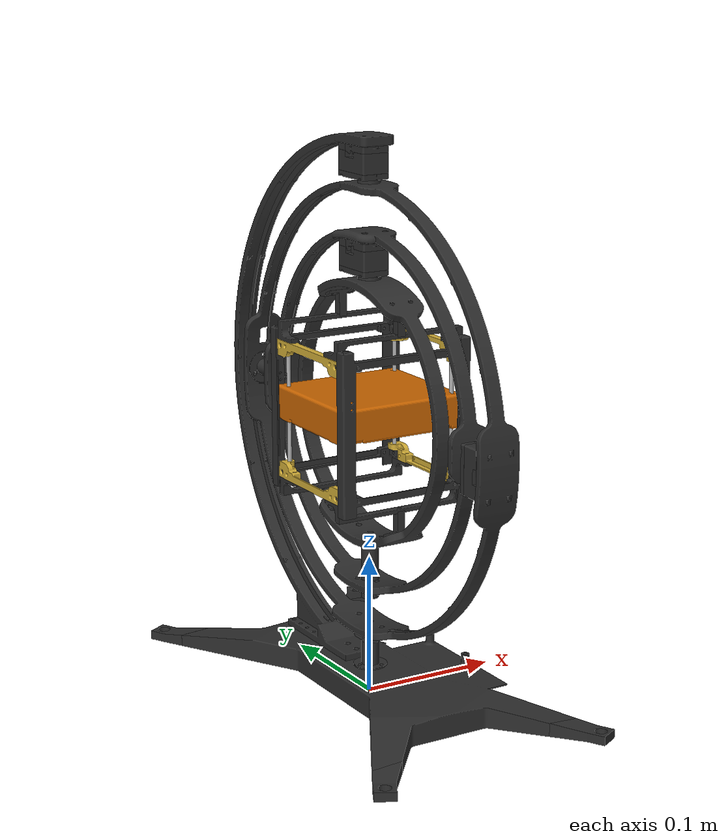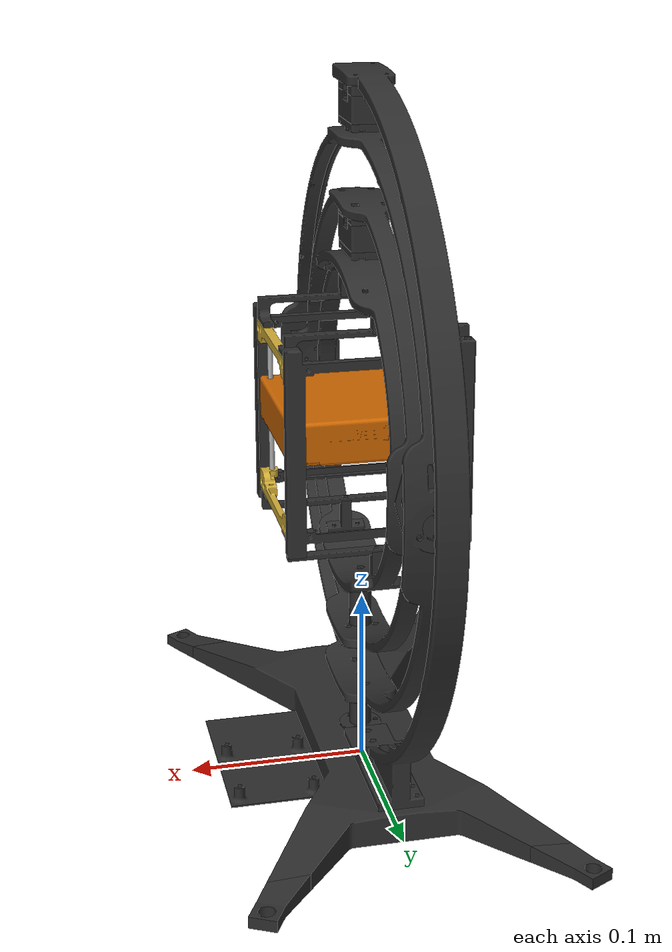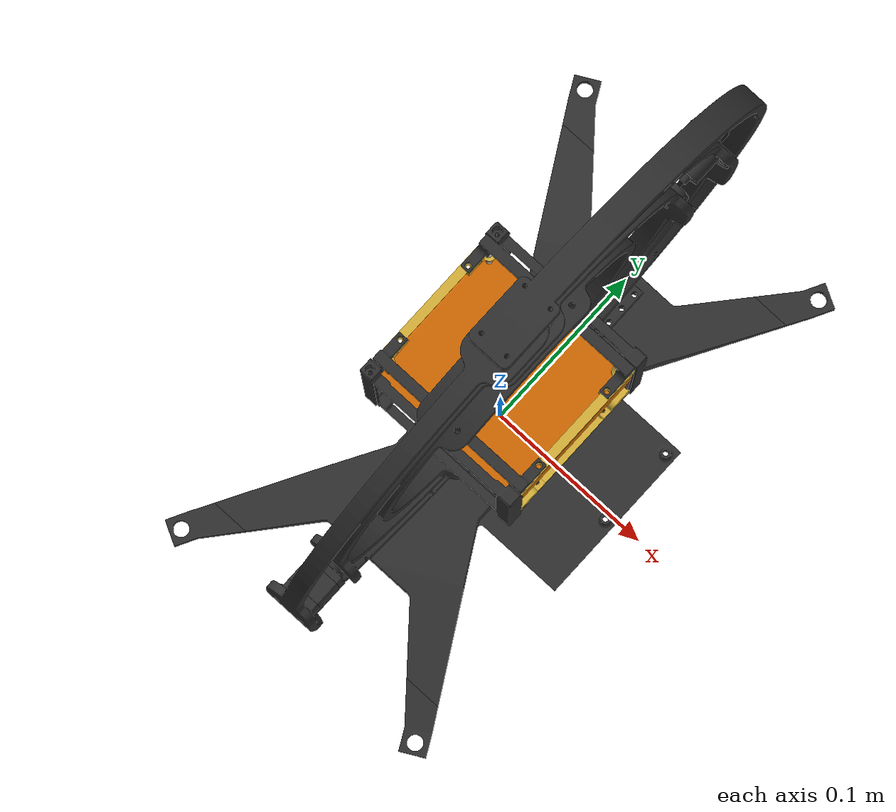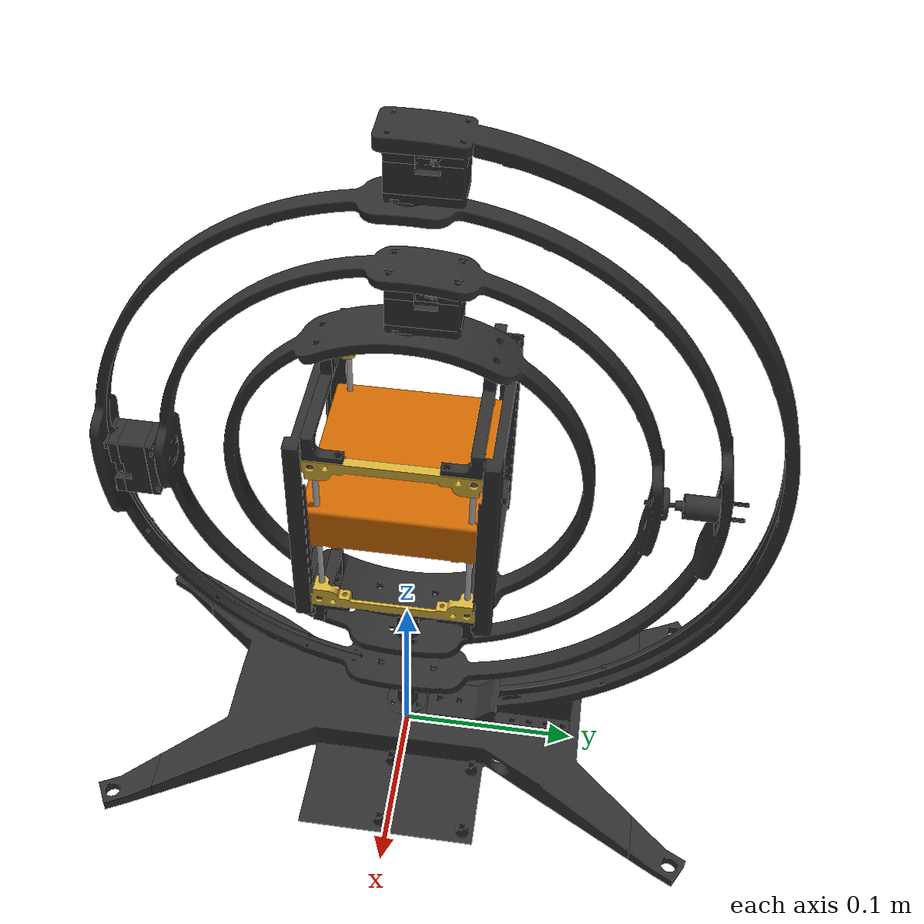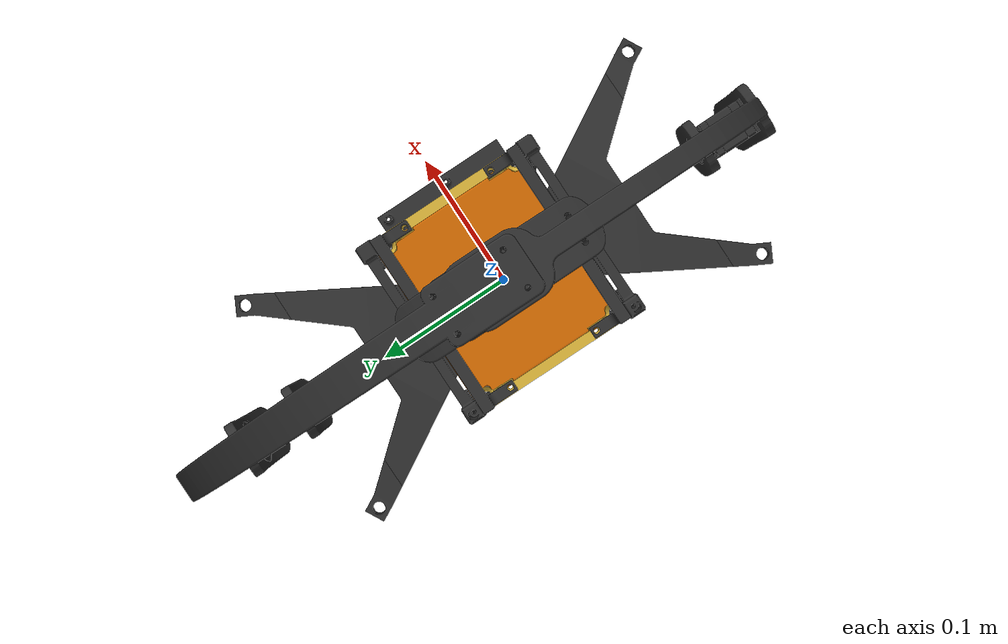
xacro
<?xml version="1.0" ?>
<robot name="testing_rig" xmlns:xacro="http://www.ros.org/wiki/xacro">

<xacro:include filename="$(find testing_rig_description)/urdf/materials.xacro" />
<xacro:include filename="$(find testing_rig_description)/urdf/testing_rig.trans" />
<xacro:include filename="$(find testing_rig_description)/urdf/testing_rig.gazebo" />
<link name="base_link">
  <inertial>
    <origin xyz="0.002283143011506284 0.000145957678142432 0.011736199126999337" rpy="0 0 0"/>
    <mass value="1.173114863642464"/>
    <inertia ixx="0.009424" iyy="0.002095" izz="0.011456" ixy="3e-06" iyz="1e-06" ixz="2.2e-05"/>
  </inertial>
  <visual>
    <origin xyz="0 0 0" rpy="0 0 0"/>
    <geometry>
      <mesh filename="package://testing_rig_description/meshes/base_link.stl" scale="0.001 0.001 0.001"/>
    </geometry>
    <material name="black"/>
  </visual>
  <collision>
    <origin xyz="0 0 0" rpy="0 0 0"/>
    <geometry>
      <mesh filename="package://testing_rig_description/meshes/base_link.stl" scale="0.001 0.001 0.001"/>
    </geometry>
  </collision>
</link>

<link name="tip_v1_1">
  <inertial>
    <origin xyz="0.006915713727585343 0.010568225086676403 -0.0018349509833612667" rpy="0 0 0"/>
    <mass value="0.028814716664613254"/>
    <inertia ixx="2e-06" iyy="2e-06" izz="4e-06" ixy="-1e-06" iyz="0.0" ixz="0.0"/>
  </inertial>
  <visual>
    <origin xyz="-0.069481 -0.138118 -0.008686" rpy="0 0 0"/>
    <geometry>
      <mesh filename="package://testing_rig_description/meshes/tip_v1_1.stl" scale="0.001 0.001 0.001"/>
    </geometry>
    <material name="black"/>
  </visual>
  <collision>
    <origin xyz="-0.069481 -0.138118 -0.008686" rpy="0 0 0"/>
    <geometry>
      <mesh filename="package://testing_rig_description/meshes/tip_v1_1.stl" scale="0.001 0.001 0.001"/>
    </geometry>
  </collision>
</link>

<link name="tip_v1_2_1">
  <inertial>
    <origin xyz="-0.006915713727662615 0.010568225086541566 -0.0018349509833612667" rpy="0 0 0"/>
    <mass value="0.02881471666461372"/>
    <inertia ixx="2e-06" iyy="2e-06" izz="4e-06" ixy="1e-06" iyz="0.0" ixz="-0.0"/>
  </inertial>
  <visual>
    <origin xyz="0.069481 -0.138118 -0.008686" rpy="0 0 0"/>
    <geometry>
      <mesh filename="package://testing_rig_description/meshes/tip_v1_2_1.stl" scale="0.001 0.001 0.001"/>
    </geometry>
    <material name="black"/>
  </visual>
  <collision>
    <origin xyz="0.069481 -0.138118 -0.008686" rpy="0 0 0"/>
    <geometry>
      <mesh filename="package://testing_rig_description/meshes/tip_v1_2_1.stl" scale="0.001 0.001 0.001"/>
    </geometry>
  </collision>
</link>

<link name="tip_v1_3_1">
  <inertial>
    <origin xyz="-0.006915713727585343 -0.010568225086676403 -0.0018349509833612667" rpy="0 0 0"/>
    <mass value="0.028814716664613254"/>
    <inertia ixx="2e-06" iyy="2e-06" izz="4e-06" ixy="-1e-06" iyz="-0.0" ixz="-0.0"/>
  </inertial>
  <visual>
    <origin xyz="0.069481 0.138118 -0.008686" rpy="0 0 0"/>
    <geometry>
      <mesh filename="package://testing_rig_description/meshes/tip_v1_3_1.stl" scale="0.001 0.001 0.001"/>
    </geometry>
    <material name="black"/>
  </visual>
  <collision>
    <origin xyz="0.069481 0.138118 -0.008686" rpy="0 0 0"/>
    <geometry>
      <mesh filename="package://testing_rig_description/meshes/tip_v1_3_1.stl" scale="0.001 0.001 0.001"/>
    </geometry>
  </collision>
</link>

<link name="tip_v1_4_1">
  <inertial>
    <origin xyz="0.006915713727662615 -0.010568225086541566 -0.0018349509833612667" rpy="0 0 0"/>
    <mass value="0.02881471666461372"/>
    <inertia ixx="2e-06" iyy="2e-06" izz="4e-06" ixy="1e-06" iyz="-0.0" ixz="0.0"/>
  </inertial>
  <visual>
    <origin xyz="-0.069481 0.138118 -0.008686" rpy="0 0 0"/>
    <geometry>
      <mesh filename="package://testing_rig_description/meshes/tip_v1_4_1.stl" scale="0.001 0.001 0.001"/>
    </geometry>
    <material name="black"/>
  </visual>
  <collision>
    <origin xyz="-0.069481 0.138118 -0.008686" rpy="0 0 0"/>
    <geometry>
      <mesh filename="package://testing_rig_description/meshes/tip_v1_4_1.stl" scale="0.001 0.001 0.001"/>
    </geometry>
  </collision>
</link>

<link name="base_tip_v1_1">
  <inertial>
    <origin xyz="-0.004497696402113562 0.007793589314646079 0.00837453733530684" rpy="0 0 0"/>
    <mass value="0.021513623215923098"/>
    <inertia ixx="1e-06" iyy="1e-06" izz="1e-06" ixy="-0.0" iyz="0.0" ixz="-0.0"/>
  </inertial>
  <visual>
    <origin xyz="-0.00545 0.007794 -0.019499" rpy="0 0 0"/>
    <geometry>
      <mesh filename="package://testing_rig_description/meshes/base_tip_v1_1.stl" scale="0.001 0.001 0.001"/>
    </geometry>
    <material name="black"/>
  </visual>
  <collision>
    <origin xyz="-0.00545 0.007794 -0.019499" rpy="0 0 0"/>
    <geometry>
      <mesh filename="package://testing_rig_description/meshes/base_tip_v1_1.stl" scale="0.001 0.001 0.001"/>
    </geometry>
  </collision>
</link>

<link name="SupportRing_Copy_v1_1">
  <inertial>
    <origin xyz="-8.350447269018981e-08 0.06702959184613164 0.15202181931555206" rpy="0 0 0"/>
    <mass value="0.3960382333506536"/>
    <inertia ixx="0.009724" iyy="0.008417" izz="0.001334" ixy="-0.0" iyz="-5.4e-05" ixz="0.0"/>
  </inertial>
  <visual>
    <origin xyz="-0.00095 -0.03155 -0.019499" rpy="0 0 0"/>
    <geometry>
      <mesh filename="package://testing_rig_description/meshes/SupportRing_Copy_v1_1.stl" scale="0.001 0.001 0.001"/>
    </geometry>
    <material name="black"/>
  </visual>
  <collision>
    <origin xyz="-0.00095 -0.03155 -0.019499" rpy="0 0 0"/>
    <geometry>
      <mesh filename="package://testing_rig_description/meshes/SupportRing_Copy_v1_1.stl" scale="0.001 0.001 0.001"/>
    </geometry>
  </collision>
</link>

<link name="motor1_v1_1">
  <inertial>
    <origin xyz="0.008014698797877466 0.015182827303640437 -0.0025432558533467486" rpy="0 0 0"/>
    <mass value="0.002470366825195182"/>
    <inertia ixx="0.0" iyy="0.0" izz="0.0" ixy="-0.0" iyz="-0.0" ixz="0.0"/>
  </inertial>
  <visual>
    <origin xyz="0.007037 0.005599 -0.38914" rpy="0 0 0"/>
    <geometry>
      <mesh filename="package://testing_rig_description/meshes/motor1_v1_1.stl" scale="0.001 0.001 0.001"/>
    </geometry>
    <material name="black"/>
  </visual>
  <collision>
    <origin xyz="0.007037 0.005599 -0.38914" rpy="0 0 0"/>
    <geometry>
      <mesh filename="package://testing_rig_description/meshes/motor1_v1_1.stl" scale="0.001 0.001 0.001"/>
    </geometry>
  </collision>
</link>

<link name="motor2_v1_1">
  <inertial>
    <origin xyz="0.008010560901146524 0.014833713929799973 -0.00785765219931972" rpy="0 0 0"/>
    <mass value="0.01562694373185061"/>
    <inertia ixx="2e-06" iyy="1e-06" izz="2e-06" ixy="-0.0" iyz="0.0" ixz="-0.0"/>
  </inertial>
  <visual>
    <origin xyz="0.007037 0.005622 -0.38464" rpy="0 0 0"/>
    <geometry>
      <mesh filename="package://testing_rig_description/meshes/motor2_v1_1.stl" scale="0.001 0.001 0.001"/>
    </geometry>
    <material name="black"/>
  </visual>
  <collision>
    <origin xyz="0.007037 0.005622 -0.38464" rpy="0 0 0"/>
    <geometry>
      <mesh filename="package://testing_rig_description/meshes/motor2_v1_1.stl" scale="0.001 0.001 0.001"/>
    </geometry>
  </collision>
</link>

<link name="motor3_v1_1">
  <inertial>
    <origin xyz="0.008032346000044807 0.01557482831062404 -0.0017498962219740233" rpy="0 0 0"/>
    <mass value="0.001972071341929661"/>
    <inertia ixx="0.0" iyy="0.0" izz="0.0" ixy="-0.0" iyz="0.0" ixz="0.0"/>
  </inertial>
  <visual>
    <origin xyz="0.007037 0.005701 -0.36964" rpy="0 0 0"/>
    <geometry>
      <mesh filename="package://testing_rig_description/meshes/motor3_v1_1.stl" scale="0.001 0.001 0.001"/>
    </geometry>
    <material name="black"/>
  </visual>
  <collision>
    <origin xyz="0.007037 0.005701 -0.36964" rpy="0 0 0"/>
    <geometry>
      <mesh filename="package://testing_rig_description/meshes/motor3_v1_1.stl" scale="0.001 0.001 0.001"/>
    </geometry>
  </collision>
</link>

<link name="motor4_v1_1">
  <inertial>
    <origin xyz="-4.967728888169692e-07 -9.228778182680418e-06 -0.0010983174824755748" rpy="0 0 0"/>
    <mass value="0.0005495044917146475"/>
    <inertia ixx="0.0" iyy="0.0" izz="0.0" ixy="0.0" iyz="0.0" ixz="-0.0"/>
  </inertial>
  <visual>
    <origin xyz="-0.000963 -0.00178 -0.366101" rpy="0 0 0"/>
    <geometry>
      <mesh filename="package://testing_rig_description/meshes/motor4_v1_1.stl" scale="0.001 0.001 0.001"/>
    </geometry>
    <material name="black"/>
  </visual>
  <collision>
    <origin xyz="-0.000963 -0.00178 -0.366101" rpy="0 0 0"/>
    <geometry>
      <mesh filename="package://testing_rig_description/meshes/motor4_v1_1.stl" scale="0.001 0.001 0.001"/>
    </geometry>
  </collision>
</link>

<link name="ThirdRingFinal_Copy_v2_1">
  <inertial>
    <origin xyz="-3.193153753389968e-05 0.001860335754553891 -0.16595994878561365" rpy="0 0 0"/>
    <mass value="0.4802307720549796"/>
    <inertia ixx="0.011664" iyy="0.005481" izz="0.006226" ixy="-0.0" iyz="9.2e-05" ixz="2e-06"/>
  </inertial>
  <visual>
    <origin xyz="-0.000963 -0.001765 -0.363201" rpy="0 0 0"/>
    <geometry>
      <mesh filename="package://testing_rig_description/meshes/ThirdRingFinal_Copy_v2_1.stl" scale="0.001 0.001 0.001"/>
    </geometry>
    <material name="black"/>
  </visual>
  <collision>
    <origin xyz="-0.000963 -0.001765 -0.363201" rpy="0 0 0"/>
    <geometry>
      <mesh filename="package://testing_rig_description/meshes/ThirdRingFinal_Copy_v2_1.stl" scale="0.001 0.001 0.001"/>
    </geometry>
  </collision>
</link>

<link name="outer_ring_ball_bearing_v1_1">
  <inertial>
    <origin xyz="-4.967483623370553e-07 -1.2198596372398263e-05 -0.0022771298909455423" rpy="0 0 0"/>
    <mass value="0.013135627183672435"/>
    <inertia ixx="1e-06" iyy="0.0" izz="1e-06" ixy="-0.0" iyz="0.0" ixz="-0.0"/>
  </inertial>
  <visual>
    <origin xyz="-0.000963 -0.000115 -0.04978" rpy="0 0 0"/>
    <geometry>
      <mesh filename="package://testing_rig_description/meshes/outer_ring_ball_bearing_v1_1.stl" scale="0.001 0.001 0.001"/>
    </geometry>
    <material name="black"/>
  </visual>
  <collision>
    <origin xyz="-0.000963 -0.000115 -0.04978" rpy="0 0 0"/>
    <geometry>
      <mesh filename="package://testing_rig_description/meshes/outer_ring_ball_bearing_v1_1.stl" scale="0.001 0.001 0.001"/>
    </geometry>
  </collision>
</link>

<link name="outer_ring_tip_v1_1">
  <inertial>
    <origin xyz="-0.0077949074581845895 -0.008350603547906094 0.004541322355146704" rpy="0 0 0"/>
    <mass value="0.021513623215923098"/>
    <inertia ixx="1e-06" iyy="1e-06" izz="1e-06" ixy="-0.0" iyz="0.0" ixz="0.0"/>
  </inertial>
  <visual>
    <origin xyz="-0.008757 -0.155832 -0.199888" rpy="0 0 0"/>
    <geometry>
      <mesh filename="package://testing_rig_description/meshes/outer_ring_tip_v1_1.stl" scale="0.001 0.001 0.001"/>
    </geometry>
    <material name="black"/>
  </visual>
  <collision>
    <origin xyz="-0.008757 -0.155832 -0.199888" rpy="0 0 0"/>
    <geometry>
      <mesh filename="package://testing_rig_description/meshes/outer_ring_tip_v1_1.stl" scale="0.001 0.001 0.001"/>
    </geometry>
  </collision>
</link>

<link name="motor1_v1__1__1">
  <inertial>
    <origin xyz="0.007984307760769185 0.002383766895279249 -0.015208065367221135" rpy="0 0 0"/>
    <mass value="0.002470366825195182"/>
    <inertia ixx="0.0" iyy="0.0" izz="0.0" ixy="0.0" iyz="-0.0" ixz="-0.0"/>
  </inertial>
  <visual>
    <origin xyz="0.007037 0.150482 -0.2135" rpy="0 0 0"/>
    <geometry>
      <mesh filename="package://testing_rig_description/meshes/motor1_v1__1__1.stl" scale="0.001 0.001 0.001"/>
    </geometry>
    <material name="black"/>
  </visual>
  <collision>
    <origin xyz="0.007037 0.150482 -0.2135" rpy="0 0 0"/>
    <geometry>
      <mesh filename="package://testing_rig_description/meshes/motor1_v1__1__1.stl" scale="0.001 0.001 0.001"/>
    </geometry>
  </collision>
</link>

<link name="motor2_v1__1__1">
  <inertial>
    <origin xyz="0.007988445657500181 0.0077015371992914805 -0.014916308494750091" rpy="0 0 0"/>
    <mass value="0.01562694373185061"/>
    <inertia ixx="2e-06" iyy="2e-06" izz="1e-06" ixy="-0.0" iyz="-0.0" ixz="-0.0"/>
  </inertial>
  <visual>
    <origin xyz="0.007037 0.145982 -0.213477" rpy="0 0 0"/>
    <geometry>
      <mesh filename="package://testing_rig_description/meshes/motor2_v1__1__1.stl" scale="0.001 0.001 0.001"/>
    </geometry>
    <material name="black"/>
  </visual>
  <collision>
    <origin xyz="0.007037 0.145982 -0.213477" rpy="0 0 0"/>
    <geometry>
      <mesh filename="package://testing_rig_description/meshes/motor2_v1__1__1.stl" scale="0.001 0.001 0.001"/>
    </geometry>
  </collision>
</link>

<link name="motor3_v1__1__1">
  <inertial>
    <origin xyz="0.007966660558601882 0.0015863169022420909 -0.015593012697308839" rpy="0 0 0"/>
    <mass value="0.001972071341929661"/>
    <inertia ixx="0.0" iyy="0.0" izz="0.0" ixy="0.0" iyz="-0.0" ixz="-0.0"/>
  </inertial>
  <visual>
    <origin xyz="0.007037 0.130982 -0.213398" rpy="0 0 0"/>
    <geometry>
      <mesh filename="package://testing_rig_description/meshes/motor3_v1__1__1.stl" scale="0.001 0.001 0.001"/>
    </geometry>
    <material name="black"/>
  </visual>
  <collision>
    <origin xyz="0.007037 0.130982 -0.213398" rpy="0 0 0"/>
    <geometry>
      <mesh filename="package://testing_rig_description/meshes/motor3_v1__1__1.stl" scale="0.001 0.001 0.001"/>
    </geometry>
  </collision>
</link>

<link name="motor4_v1__1__1">
  <inertial>
    <origin xyz="-4.966685807063177e-07 0.0010978578364332636 -8.917837016758634e-06" rpy="0 0 0"/>
    <mass value="0.0005495044917146475"/>
    <inertia ixx="0.0" iyy="0.0" izz="0.0" ixy="0.0" iyz="-0.0" ixz="0.0"/>
  </inertial>
  <visual>
    <origin xyz="-0.000963 0.127521 -0.205879" rpy="0 0 0"/>
    <geometry>
      <mesh filename="package://testing_rig_description/meshes/motor4_v1__1__1.stl" scale="0.001 0.001 0.001"/>
    </geometry>
    <material name="black"/>
  </visual>
  <collision>
    <origin xyz="-0.000963 0.127521 -0.205879" rpy="0 0 0"/>
    <geometry>
      <mesh filename="package://testing_rig_description/meshes/motor4_v1__1__1.stl" scale="0.001 0.001 0.001"/>
    </geometry>
  </collision>
</link>

<link name="SecondRingFinal_Copy_v2_1">
  <inertial>
    <origin xyz="5.0953962492784e-05 0.12264301881889256 -0.0034166016322534076" rpy="0 0 0"/>
    <mass value="0.40091267518933105"/>
    <inertia ixx="0.006113" iyy="0.003236" izz="0.002909" ixy="-0.0" iyz="4.1e-05" ixz="-3e-06"/>
  </inertial>
  <visual>
    <origin xyz="-0.000963 0.124621 -0.205864" rpy="0 0 0"/>
    <geometry>
      <mesh filename="package://testing_rig_description/meshes/SecondRingFinal_Copy_v2_1.stl" scale="0.001 0.001 0.001"/>
    </geometry>
    <material name="black"/>
  </visual>
  <collision>
    <origin xyz="-0.000963 0.124621 -0.205864" rpy="0 0 0"/>
    <geometry>
      <mesh filename="package://testing_rig_description/meshes/SecondRingFinal_Copy_v2_1.stl" scale="0.001 0.001 0.001"/>
    </geometry>
  </collision>
</link>

<link name="outer_ring_ball_bearing_v1__1__1">
  <inertial>
    <origin xyz="-4.96692990938942e-07 0.0022775762104285113 -1.1715936935219329e-05" rpy="0 0 0"/>
    <mass value="0.013135627183672435"/>
    <inertia ixx="1e-06" iyy="1e-06" izz="0.0" ixy="-0.0" iyz="-0.0" ixz="-0.0"/>
  </inertial>
  <visual>
    <origin xyz="-0.000963 -0.123425 -0.204558" rpy="0 0 0"/>
    <geometry>
      <mesh filename="package://testing_rig_description/meshes/outer_ring_ball_bearing_v1__1__1.stl" scale="0.001 0.001 0.001"/>
    </geometry>
    <material name="black"/>
  </visual>
  <collision>
    <origin xyz="-0.000963 -0.123425 -0.204558" rpy="0 0 0"/>
    <geometry>
      <mesh filename="package://testing_rig_description/meshes/outer_ring_ball_bearing_v1__1__1.stl" scale="0.001 0.001 0.001"/>
    </geometry>
  </collision>
</link>

<link name="motor1_v1__2__1">
  <inertial>
    <origin xyz="0.008014698797877504 0.015182559733266876 -0.0025433263319444843" rpy="0 0 0"/>
    <mass value="0.002470366825195182"/>
    <inertia ixx="0.0" iyy="0.0" izz="0.0" ixy="-0.0" iyz="-0.0" ixz="0.0"/>
  </inertial>
  <visual>
    <origin xyz="0.007037 0.005999 -0.323786" rpy="0 0 0"/>
    <geometry>
      <mesh filename="package://testing_rig_description/meshes/motor1_v1__2__1.stl" scale="0.001 0.001 0.001"/>
    </geometry>
    <material name="black"/>
  </visual>
  <collision>
    <origin xyz="0.007037 0.005999 -0.323786" rpy="0 0 0"/>
    <geometry>
      <mesh filename="package://testing_rig_description/meshes/motor1_v1__2__1.stl" scale="0.001 0.001 0.001"/>
    </geometry>
  </collision>
</link>

<link name="motor2_v1__2__1">
  <inertial>
    <origin xyz="0.008010560901146529 0.014834446359426358 -0.007857722677917567" rpy="0 0 0"/>
    <mass value="0.01562694373185061"/>
    <inertia ixx="2e-06" iyy="1e-06" izz="2e-06" ixy="-0.0" iyz="0.0" ixz="-0.0"/>
  </inertial>
  <visual>
    <origin xyz="0.007037 0.006023 -0.319286" rpy="0 0 0"/>
    <geometry>
      <mesh filename="package://testing_rig_description/meshes/motor2_v1__2__1.stl" scale="0.001 0.001 0.001"/>
    </geometry>
    <material name="black"/>
  </visual>
  <collision>
    <origin xyz="0.007037 0.006023 -0.319286" rpy="0 0 0"/>
    <geometry>
      <mesh filename="package://testing_rig_description/meshes/motor2_v1__2__1.stl" scale="0.001 0.001 0.001"/>
    </geometry>
  </collision>
</link>

<link name="motor3_v1__2__1">
  <inertial>
    <origin xyz="0.008032346000044833 0.01557556074025046 -0.0017499667005719255" rpy="0 0 0"/>
    <mass value="0.001972071341929661"/>
    <inertia ixx="0.0" iyy="0.0" izz="0.0" ixy="-0.0" iyz="0.0" ixz="0.0"/>
  </inertial>
  <visual>
    <origin xyz="0.007037 0.006102 -0.304286" rpy="0 0 0"/>
    <geometry>
      <mesh filename="package://testing_rig_description/meshes/motor3_v1__2__1.stl" scale="0.001 0.001 0.001"/>
    </geometry>
    <material name="black"/>
  </visual>
  <collision>
    <origin xyz="0.007037 0.006102 -0.304286" rpy="0 0 0"/>
    <geometry>
      <mesh filename="package://testing_rig_description/meshes/motor3_v1__2__1.stl" scale="0.001 0.001 0.001"/>
    </geometry>
  </collision>
</link>

<link name="motor4_v1__2__1">
  <inertial>
    <origin xyz="-4.967728887887799e-07 -9.496348556266429e-06 -0.001098387961073366" rpy="0 0 0"/>
    <mass value="0.0005495044917146475"/>
    <inertia ixx="0.0" iyy="0.0" izz="0.0" ixy="0.0" iyz="0.0" ixz="-0.0"/>
  </inertial>
  <visual>
    <origin xyz="-0.000963 -0.00138 -0.300747" rpy="0 0 0"/>
    <geometry>
      <mesh filename="package://testing_rig_description/meshes/motor4_v1__2__1.stl" scale="0.001 0.001 0.001"/>
    </geometry>
    <material name="black"/>
  </visual>
  <collision>
    <origin xyz="-0.000963 -0.00138 -0.300747" rpy="0 0 0"/>
    <geometry>
      <mesh filename="package://testing_rig_description/meshes/motor4_v1__2__1.stl" scale="0.001 0.001 0.001"/>
    </geometry>
  </collision>
</link>

<link name="FirstRingFinal_Copy_v2_1">
  <inertial>
    <origin xyz="-4.968390760245935e-07 -0.00046852894593677375 -0.0889142372561941" rpy="0 0 0"/>
    <mass value="0.40633348225597904"/>
    <inertia ixx="0.003302" iyy="0.002161" izz="0.001182" ixy="-0.0" iyz="-5e-06" ixz="-0.0"/>
  </inertial>
  <visual>
    <origin xyz="-0.000963 -0.001365 -0.297847" rpy="0 0 0"/>
    <geometry>
      <mesh filename="package://testing_rig_description/meshes/FirstRingFinal_Copy_v2_1.stl" scale="0.001 0.001 0.001"/>
    </geometry>
    <material name="black"/>
  </visual>
  <collision>
    <origin xyz="-0.000963 -0.001365 -0.297847" rpy="0 0 0"/>
    <geometry>
      <mesh filename="package://testing_rig_description/meshes/FirstRingFinal_Copy_v2_1.stl" scale="0.001 0.001 0.001"/>
    </geometry>
  </collision>
</link>

<link name="inner_ring_ball_bearing_v1_1">
  <inertial>
    <origin xyz="-4.967483622814357e-07 -1.1841621000433541e-05 -0.0022777998152183204" rpy="0 0 0"/>
    <mass value="0.013135627183672435"/>
    <inertia ixx="1e-06" iyy="0.0" izz="1e-06" ixy="-0.0" iyz="0.0" ixz="-0.0"/>
  </inertial>
  <visual>
    <origin xyz="-0.000963 -0.000406 -0.115798" rpy="0 0 0"/>
    <geometry>
      <mesh filename="package://testing_rig_description/meshes/inner_ring_ball_bearing_v1_1.stl" scale="0.001 0.001 0.001"/>
    </geometry>
    <material name="black"/>
  </visual>
  <collision>
    <origin xyz="-0.000963 -0.000406 -0.115798" rpy="0 0 0"/>
    <geometry>
      <mesh filename="package://testing_rig_description/meshes/inner_ring_ball_bearing_v1_1.stl" scale="0.001 0.001 0.001"/>
    </geometry>
  </collision>
</link>

<link name="inner_ring_pin_v1_1">
  <inertial>
    <origin xyz="-0.015962488766863712 0.00047835012240045533 0.011554971108466872" rpy="0 0 0"/>
    <mass value="0.05723159280409613"/>
    <inertia ixx="1.3e-05" iyy="1.3e-05" izz="3e-06" ixy="-0.0" iyz="-0.0" ixz="0.0"/>
  </inertial>
  <visual>
    <origin xyz="-0.016925 0.000161 -0.087365" rpy="0 0 0"/>
    <geometry>
      <mesh filename="package://testing_rig_description/meshes/inner_ring_pin_v1_1.stl" scale="0.001 0.001 0.001"/>
    </geometry>
    <material name="black"/>
  </visual>
  <collision>
    <origin xyz="-0.016925 0.000161 -0.087365" rpy="0 0 0"/>
    <geometry>
      <mesh filename="package://testing_rig_description/meshes/inner_ring_pin_v1_1.stl" scale="0.001 0.001 0.001"/>
    </geometry>
  </collision>
</link>

<link name="Bracket-Ring-Mount_v1_1">
  <inertial>
    <origin xyz="-0.007000496346470639 -0.00024406993603380556 0.0066089485500640255" rpy="0 0 0"/>
    <mass value="0.006460384548743213"/>
    <inertia ixx="0.0" iyy="0.0" izz="0.0" ixy="-0.0" iyz="-0.0" ixz="0.0"/>
  </inertial>
  <visual>
    <origin xyz="-0.007963 -0.03908 -0.126789" rpy="0 0 0"/>
    <geometry>
      <mesh filename="package://testing_rig_description/meshes/Bracket-Ring-Mount_v1_1.stl" scale="0.001 0.001 0.001"/>
    </geometry>
    <material name="black"/>
  </visual>
  <collision>
    <origin xyz="-0.007963 -0.03908 -0.126789" rpy="0 0 0"/>
    <geometry>
      <mesh filename="package://testing_rig_description/meshes/Bracket-Ring-Mount_v1_1.stl" scale="0.001 0.001 0.001"/>
    </geometry>
  </collision>
</link>

<link name="CubeSat1UMountingBracket_v1_1">
  <inertial>
    <origin xyz="-1.7057104253442694e-06 -0.03837245970328034 0.0033703317955060264" rpy="0 0 0"/>
    <mass value="0.0447695629017108"/>
    <inertia ixx="6.3e-05" iyy="6.1e-05" izz="0.000123" ixy="0.0" iyz="0.0" ixz="0.0"/>
  </inertial>
  <visual>
    <origin xyz="-0.000963 -0.038945 -0.144403" rpy="0 0 0"/>
    <geometry>
      <mesh filename="package://testing_rig_description/meshes/CubeSat1UMountingBracket_v1_1.stl" scale="0.001 0.001 0.001"/>
    </geometry>
    <material name="black"/>
  </visual>
  <collision>
    <origin xyz="-0.000963 -0.038945 -0.144403" rpy="0 0 0"/>
    <geometry>
      <mesh filename="package://testing_rig_description/meshes/CubeSat1UMountingBracket_v1_1.stl" scale="0.001 0.001 0.001"/>
    </geometry>
  </collision>
</link>

<link name="1U_Cubesat_Rib_2_v1_1">
  <inertial>
    <origin xyz="-0.0005284260177583697 -0.024739695415205976 0.0048544779101448166" rpy="0 0 0"/>
    <mass value="0.015886475366101913"/>
    <inertia ixx="1.3e-05" iyy="0.0" izz="1.3e-05" ixy="-0.0" iyz="0.0" ixz="-0.0"/>
  </inertial>
  <visual>
    <origin xyz="0.044837 -0.025316 -0.155975" rpy="0 0 0"/>
    <geometry>
      <mesh filename="package://testing_rig_description/meshes/1U_Cubesat_Rib_2_v1_1.stl" scale="0.001 0.001 0.001"/>
    </geometry>
    <material name="gold"/>
  </visual>
  <collision>
    <origin xyz="0.044837 -0.025316 -0.155975" rpy="0 0 0"/>
    <geometry>
      <mesh filename="package://testing_rig_description/meshes/1U_Cubesat_Rib_2_v1_1.stl" scale="0.001 0.001 0.001"/>
    </geometry>
  </collision>
</link>

<link name="1U_Cubesat_Side_Frame_2_v1_1">
  <inertial>
    <origin xyz="0.049280897611112776 0.008784247488415081 0.04685979174242769" rpy="0 0 0"/>
    <mass value="0.07550573244327077"/>
    <inertia ixx="0.000129" iyy="0.000267" izz="0.000139" ixy="-0.0" iyz="-0.0" ixz="-5e-06"/>
  </inertial>
  <visual>
    <origin xyz="0.047037 -0.038137 -0.160007" rpy="0 0 0"/>
    <geometry>
      <mesh filename="package://testing_rig_description/meshes/1U_Cubesat_Side_Frame_2_v1_1.stl" scale="0.001 0.001 0.001"/>
    </geometry>
    <material name="black"/>
  </visual>
  <collision>
    <origin xyz="0.047037 -0.038137 -0.160007" rpy="0 0 0"/>
    <geometry>
      <mesh filename="package://testing_rig_description/meshes/1U_Cubesat_Side_Frame_2_v1_1.stl" scale="0.001 0.001 0.001"/>
    </geometry>
  </collision>
</link>

<link name="1U_Cubesat_Side_Frame_1_v1_1">
  <inertial>
    <origin xyz="0.04927361497301489 -0.008289485219094728 0.04691364874078996" rpy="0 0 0"/>
    <mass value="0.07551919617430682"/>
    <inertia ixx="0.000129" iyy="0.000267" izz="0.000139" ixy="0.0" iyz="-1e-06" ixz="-5e-06"/>
  </inertial>
  <visual>
    <origin xyz="0.047037 0.036862 -0.160402" rpy="0 0 0"/>
    <geometry>
      <mesh filename="package://testing_rig_description/meshes/1U_Cubesat_Side_Frame_1_v1_1.stl" scale="0.001 0.001 0.001"/>
    </geometry>
    <material name="black"/>
  </visual>
  <collision>
    <origin xyz="0.047037 0.036862 -0.160402" rpy="0 0 0"/>
    <geometry>
      <mesh filename="package://testing_rig_description/meshes/1U_Cubesat_Side_Frame_1_v1_1.stl" scale="0.001 0.001 0.001"/>
    </geometry>
  </collision>
</link>

<link name="1U_Cubesat_Rib_2_v1_2">
  <inertial>
    <origin xyz="0.001671573982241846 0.03756145814361564 -0.0008223751920644062" rpy="0 0 0"/>
    <mass value="0.015886475366101913"/>
    <inertia ixx="1.3e-05" iyy="0.0" izz="1.3e-05" ixy="0.0" iyz="0.0" ixz="0.0"/>
  </inertial>
  <visual>
    <origin xyz="0.047037 0.036387 -0.250601" rpy="0 0 0"/>
    <geometry>
      <mesh filename="package://testing_rig_description/meshes/1U_Cubesat_Rib_2_v1_2.stl" scale="0.001 0.001 0.001"/>
    </geometry>
    <material name="gold"/>
  </visual>
  <collision>
    <origin xyz="0.047037 0.036387 -0.250601" rpy="0 0 0"/>
    <geometry>
      <mesh filename="package://testing_rig_description/meshes/1U_Cubesat_Rib_2_v1_2.stl" scale="0.001 0.001 0.001"/>
    </geometry>
  </collision>
</link>

<link name="rod_v1_1">
  <inertial>
    <origin xyz="-4.967725427754144e-07 0.0002173462814715199 0.041349303116065494" rpy="0 0 0"/>
    <mass value="0.00436828024479217"/>
    <inertia ixx="2e-06" iyy="2e-06" izz="0.0" ixy="0.0" iyz="-0.0" ixz="0.0"/>
  </inertial>
  <visual>
    <origin xyz="0.041937 -0.037462 -0.164611" rpy="0 0 0"/>
    <geometry>
      <mesh filename="package://testing_rig_description/meshes/rod_v1_1.stl" scale="0.001 0.001 0.001"/>
    </geometry>
    <material name="silver"/>
  </visual>
  <collision>
    <origin xyz="0.041937 -0.037462 -0.164611" rpy="0 0 0"/>
    <geometry>
      <mesh filename="package://testing_rig_description/meshes/rod_v1_1.stl" scale="0.001 0.001 0.001"/>
    </geometry>
  </collision>
</link>

<link name="rod_v1__1__1">
  <inertial>
    <origin xyz="-4.967725427407199e-07 0.00021736761502647028 0.041349302501221125" rpy="0 0 0"/>
    <mass value="0.00436828024479217"/>
    <inertia ixx="2e-06" iyy="2e-06" izz="0.0" ixy="-0.0" iyz="-0.0" ixz="0.0"/>
  </inertial>
  <visual>
    <origin xyz="0.041937 0.036237 -0.164999" rpy="0 0 0"/>
    <geometry>
      <mesh filename="package://testing_rig_description/meshes/rod_v1__1__1.stl" scale="0.001 0.001 0.001"/>
    </geometry>
    <material name="silver"/>
  </visual>
  <collision>
    <origin xyz="0.041937 0.036237 -0.164999" rpy="0 0 0"/>
    <geometry>
      <mesh filename="package://testing_rig_description/meshes/rod_v1__1__1.stl" scale="0.001 0.001 0.001"/>
    </geometry>
  </collision>
</link>

<link name="Beacon_bottom_v1_1">
  <inertial>
    <origin xyz="0.04213774207612821 0.0369431841640967 -0.00011487800293769057" rpy="0 0 0"/>
    <mass value="0.45077777593166424"/>
    <inertia ixx="0.000486" iyy="0.000507" izz="0.000921" ixy="-2e-06" iyz="5e-06" ixz="3e-06"/>
  </inertial>
  <visual>
    <origin xyz="0.041937 0.03602 -0.206348" rpy="0 0 0"/>
    <geometry>
      <mesh filename="package://testing_rig_description/meshes/Beacon_bottom_v1_1.stl" scale="0.001 0.001 0.001"/>
    </geometry>
    <material name="orange"/>
  </visual>
  <collision>
    <origin xyz="0.041937 0.03602 -0.206348" rpy="0 0 0"/>
    <geometry>
      <mesh filename="package://testing_rig_description/meshes/Beacon_bottom_v1_1.stl" scale="0.001 0.001 0.001"/>
    </geometry>
  </collision>
</link>

<link name="Beacon_top_v1_1">
  <inertial>
    <origin xyz="-0.049345557593111565 -0.0012886524481072344 0.009731103409582942" rpy="0 0 0"/>
    <mass value="0.23249807185543006"/>
    <inertia ixx="0.000206" iyy="0.000267" izz="0.000464" ixy="-4e-06" iyz="1e-06" ixz="-1e-06"/>
  </inertial>
  <visual>
    <origin xyz="-0.048873 -0.001445 -0.206151" rpy="0 0 0"/>
    <geometry>
      <mesh filename="package://testing_rig_description/meshes/Beacon_top_v1_1.stl" scale="0.001 0.001 0.001"/>
    </geometry>
    <material name="orange"/>
  </visual>
  <collision>
    <origin xyz="-0.048873 -0.001445 -0.206151" rpy="0 0 0"/>
    <geometry>
      <mesh filename="package://testing_rig_description/meshes/Beacon_top_v1_1.stl" scale="0.001 0.001 0.001"/>
    </geometry>
  </collision>
</link>

<link name="1U_Cubesat_Rib_2_v1_3">
  <inertial>
    <origin xyz="-0.0016725675279397612 0.037431594379322385 -0.000821691504697214" rpy="0 0 0"/>
    <mass value="0.015886475366101913"/>
    <inertia ixx="1.3e-05" iyy="0.0" izz="1.3e-05" ixy="0.0" iyz="0.0" ixz="-0.0"/>
  </inertial>
  <visual>
    <origin xyz="-0.048963 0.036387 -0.250601" rpy="0 0 0"/>
    <geometry>
      <mesh filename="package://testing_rig_description/meshes/1U_Cubesat_Rib_2_v1_3.stl" scale="0.001 0.001 0.001"/>
    </geometry>
    <material name="gold"/>
  </visual>
  <collision>
    <origin xyz="-0.048963 0.036387 -0.250601" rpy="0 0 0"/>
    <geometry>
      <mesh filename="package://testing_rig_description/meshes/1U_Cubesat_Rib_2_v1_3.stl" scale="0.001 0.001 0.001"/>
    </geometry>
  </collision>
</link>

<link name="1U_Cubesat_Rib_2_v1_4">
  <inertial>
    <origin xyz="-0.0016725675279401359 0.037568168349085364 0.00042679422277747125" rpy="0 0 0"/>
    <mass value="0.015886475366101913"/>
    <inertia ixx="1.3e-05" iyy="0.0" izz="1.3e-05" ixy="-0.0" iyz="0.0" ixz="0.0"/>
  </inertial>
  <visual>
    <origin xyz="-0.048963 0.036862 -0.160402" rpy="0 0 0"/>
    <geometry>
      <mesh filename="package://testing_rig_description/meshes/1U_Cubesat_Rib_2_v1_4.stl" scale="0.001 0.001 0.001"/>
    </geometry>
    <material name="gold"/>
  </visual>
  <collision>
    <origin xyz="-0.048963 0.036862 -0.160402" rpy="0 0 0"/>
    <geometry>
      <mesh filename="package://testing_rig_description/meshes/1U_Cubesat_Rib_2_v1_4.stl" scale="0.001 0.001 0.001"/>
    </geometry>
  </collision>
</link>

<link name="rod_v1__1__2">
  <inertial>
    <origin xyz="-4.967725424145919e-07 0.00021736622922667592 0.04134977604343909" rpy="0 0 0"/>
    <mass value="0.00436828024479217"/>
    <inertia ixx="2e-06" iyy="2e-06" izz="0.0" ixy="0.0" iyz="-0.0" ixz="0.0"/>
  </inertial>
  <visual>
    <origin xyz="-0.043863 0.036137 -0.164998" rpy="0 0 0"/>
    <geometry>
      <mesh filename="package://testing_rig_description/meshes/rod_v1__1__2.stl" scale="0.001 0.001 0.001"/>
    </geometry>
    <material name="silver"/>
  </visual>
  <collision>
    <origin xyz="-0.043863 0.036137 -0.164998" rpy="0 0 0"/>
    <geometry>
      <mesh filename="package://testing_rig_description/meshes/rod_v1__1__2.stl" scale="0.001 0.001 0.001"/>
    </geometry>
  </collision>
</link>

<link name="rod_v1__1__3">
  <inertial>
    <origin xyz="-4.967725447252436e-07 0.00021734489567198922 0.04134977665828374" rpy="0 0 0"/>
    <mass value="0.00436828024479217"/>
    <inertia ixx="2e-06" iyy="2e-06" izz="0.0" ixy="0.0" iyz="-0.0" ixz="0.0"/>
  </inertial>
  <visual>
    <origin xyz="-0.043863 -0.037562 -0.16461" rpy="0 0 0"/>
    <geometry>
      <mesh filename="package://testing_rig_description/meshes/rod_v1__1__3.stl" scale="0.001 0.001 0.001"/>
    </geometry>
    <material name="silver"/>
  </visual>
  <collision>
    <origin xyz="-0.043863 -0.037562 -0.16461" rpy="0 0 0"/>
    <geometry>
      <mesh filename="package://testing_rig_description/meshes/rod_v1__1__3.stl" scale="0.001 0.001 0.001"/>
    </geometry>
  </collision>
</link>

<link name="Bracket-Ring-Mount_v1_2">
  <inertial>
    <origin xyz="-4.971992271569263e-07 -6.1631787202295896e-06 -0.011005378596219445" rpy="0 0 0"/>
    <mass value="0.006460384548743213"/>
    <inertia ixx="0.0" iyy="0.0" izz="0.0" ixy="-0.0" iyz="0.0" ixz="-0.0"/>
  </inertial>
  <visual>
    <origin xyz="-0.000963 0.037834 -0.144807" rpy="0 0 0"/>
    <geometry>
      <mesh filename="package://testing_rig_description/meshes/Bracket-Ring-Mount_v1_2.stl" scale="0.001 0.001 0.001"/>
    </geometry>
    <material name="black"/>
  </visual>
  <collision>
    <origin xyz="-0.000963 0.037834 -0.144807" rpy="0 0 0"/>
    <geometry>
      <mesh filename="package://testing_rig_description/meshes/Bracket-Ring-Mount_v1_2.stl" scale="0.001 0.001 0.001"/>
    </geometry>
  </collision>
</link>

<link name="CubeSat1UMountingBracket_v1_2">
  <inertial>
    <origin xyz="-0.04579928783527349 0.024743298589283345 0.008201770521627572" rpy="0 0 0"/>
    <mass value="0.0447695629017108"/>
    <inertia ixx="6.3e-05" iyy="6.1e-05" izz="0.000123" ixy="-0.0" iyz="0.0" ixz="0.0"/>
  </inertial>
  <visual>
    <origin xyz="-0.046763 0.023565 -0.254633" rpy="0 0 0"/>
    <geometry>
      <mesh filename="package://testing_rig_description/meshes/CubeSat1UMountingBracket_v1_2.stl" scale="0.001 0.001 0.001"/>
    </geometry>
    <material name="black"/>
  </visual>
  <collision>
    <origin xyz="-0.046763 0.023565 -0.254633" rpy="0 0 0"/>
    <geometry>
      <mesh filename="package://testing_rig_description/meshes/CubeSat1UMountingBracket_v1_2.stl" scale="0.001 0.001 0.001"/>
    </geometry>
  </collision>
</link>

<link name="Bracket-Ring-Mount_v1_3">
  <inertial>
    <origin xyz="-4.963464709318091e-07 0.0001098326644411382 0.011005154168012787" rpy="0 0 0"/>
    <mass value="0.006460384548743213"/>
    <inertia ixx="0.0" iyy="0.0" izz="0.0" ixy="0.0" iyz="-0.0" ixz="-0.0"/>
  </inertial>
  <visual>
    <origin xyz="-0.000963 0.037195 -0.266205" rpy="0 0 0"/>
    <geometry>
      <mesh filename="package://testing_rig_description/meshes/Bracket-Ring-Mount_v1_3.stl" scale="0.001 0.001 0.001"/>
    </geometry>
    <material name="black"/>
  </visual>
  <collision>
    <origin xyz="-0.000963 0.037195 -0.266205" rpy="0 0 0"/>
    <geometry>
      <mesh filename="package://testing_rig_description/meshes/Bracket-Ring-Mount_v1_3.stl" scale="0.001 0.001 0.001"/>
    </geometry>
  </collision>
</link>

<link name="Bracket-Ring-Mount_v1_4">
  <inertial>
    <origin xyz="-4.971992296515671e-07 6.925907127648678e-06 0.011005481314296184" rpy="0 0 0"/>
    <mass value="0.006460384548743213"/>
    <inertia ixx="0.0" iyy="0.0" izz="0.0" ixy="0.0" iyz="0.0" ixz="0.0"/>
  </inertial>
  <visual>
    <origin xyz="-0.000963 -0.039584 -0.265801" rpy="0 0 0"/>
    <geometry>
      <mesh filename="package://testing_rig_description/meshes/Bracket-Ring-Mount_v1_4.stl" scale="0.001 0.001 0.001"/>
    </geometry>
    <material name="black"/>
  </visual>
  <collision>
    <origin xyz="-0.000963 -0.039584 -0.265801" rpy="0 0 0"/>
    <geometry>
      <mesh filename="package://testing_rig_description/meshes/Bracket-Ring-Mount_v1_4.stl" scale="0.001 0.001 0.001"/>
    </geometry>
  </collision>
</link>

<joint name="Rigid 6" type="fixed">
  <origin xyz="0.069481 0.138118 0.008686" rpy="0 0 0"/>
  <parent link="base_link"/>
  <child link="tip_v1_1"/>
</joint>

<joint name="Rigid 7" type="fixed">
  <origin xyz="-0.069481 0.138118 0.008686" rpy="0 0 0"/>
  <parent link="base_link"/>
  <child link="tip_v1_2_1"/>
</joint>

<joint name="Rigid 8" type="fixed">
  <origin xyz="-0.069481 -0.138118 0.008686" rpy="0 0 0"/>
  <parent link="base_link"/>
  <child link="tip_v1_3_1"/>
</joint>

<joint name="Rigid 9" type="fixed">
  <origin xyz="0.069481 -0.138118 0.008686" rpy="0 0 0"/>
  <parent link="base_link"/>
  <child link="tip_v1_4_1"/>
</joint>

<joint name="Rigid 10" type="fixed">
  <origin xyz="0.00545 -0.007794 0.019499" rpy="0 0 0"/>
  <parent link="base_link"/>
  <child link="base_tip_v1_1"/>
</joint>

<joint name="Rigid 11" type="fixed">
  <origin xyz="0.00095 0.03155 0.019499" rpy="0 0 0"/>
  <parent link="base_link"/>
  <child link="SupportRing_Copy_v1_1"/>
</joint>

<joint name="Rigid 12" type="fixed">
  <origin xyz="-0.007987 -0.037149 0.369641" rpy="0 0 0"/>
  <parent link="SupportRing_Copy_v1_1"/>
  <child link="motor1_v1_1"/>
</joint>

<joint name="Rigid 13" type="fixed">
  <origin xyz="0.0 -2.3e-05 -0.0045" rpy="0 0 0"/>
  <parent link="motor1_v1_1"/>
  <child link="motor2_v1_1"/>
</joint>

<joint name="Rigid 14" type="fixed">
  <origin xyz="0.0 -7.9e-05 -0.015" rpy="0 0 0"/>
  <parent link="motor2_v1_1"/>
  <child link="motor3_v1_1"/>
</joint>

<joint name="outer_ring" type="continuous">
  <origin xyz="0.008 0.007481 -0.003539" rpy="0 0 0"/>
  <parent link="motor3_v1_1"/>
  <child link="motor4_v1_1"/>
  <axis xyz="-0.0 -0.005265 -0.999986"/>
</joint>

<joint name="Rigid 16" type="fixed">
  <origin xyz="0.0 -1.5e-05 -0.0029" rpy="0 0 0"/>
  <parent link="motor4_v1_1"/>
  <child link="ThirdRingFinal_Copy_v2_1"/>
</joint>

<joint name="Rigid 18" type="fixed">
  <origin xyz="0.0 -0.00165 -0.313421" rpy="0 0 0"/>
  <parent link="ThirdRingFinal_Copy_v2_1"/>
  <child link="outer_ring_ball_bearing_v1_1"/>
</joint>

<joint name="Rigid 19" type="fixed">
  <origin xyz="0.007794 0.154067 -0.163313" rpy="0 0 0"/>
  <parent link="ThirdRingFinal_Copy_v2_1"/>
  <child link="outer_ring_tip_v1_1"/>
</joint>

<joint name="Rigid 20" type="fixed">
  <origin xyz="-0.008 -0.152247 -0.149701" rpy="0 0 0"/>
  <parent link="ThirdRingFinal_Copy_v2_1"/>
  <child link="motor1_v1__1__1"/>
</joint>

<joint name="Rigid 21" type="fixed">
  <origin xyz="0.0 0.0045 -2.3e-05" rpy="0 0 0"/>
  <parent link="motor1_v1__1__1"/>
  <child link="motor2_v1__1__1"/>
</joint>

<joint name="Rigid 22" type="fixed">
  <origin xyz="0.0 0.015 -7.9e-05" rpy="0 0 0"/>
  <parent link="motor2_v1__1__1"/>
  <child link="motor3_v1__1__1"/>
</joint>

<joint name="middle_ring" type="continuous">
  <origin xyz="0.008 0.003461 -0.007519" rpy="0 0 0"/>
  <parent link="motor3_v1__1__1"/>
  <child link="motor4_v1__1__1"/>
  <axis xyz="0.0 0.999986 -0.005265"/>
</joint>

<joint name="Rigid 24" type="fixed">
  <origin xyz="0.0 0.0029 -1.5e-05" rpy="0 0 0"/>
  <parent link="motor4_v1__1__1"/>
  <child link="SecondRingFinal_Copy_v2_1"/>
</joint>

<joint name="Rigid 25" type="fixed">
  <origin xyz="0.0 0.248046 -0.001306" rpy="0 0 0"/>
  <parent link="SecondRingFinal_Copy_v2_1"/>
  <child link="outer_ring_ball_bearing_v1__1__1"/>
</joint>

<joint name="Rigid 26" type="fixed">
  <origin xyz="-0.008 0.118622 0.117922" rpy="0 0 0"/>
  <parent link="SecondRingFinal_Copy_v2_1"/>
  <child link="motor1_v1__2__1"/>
</joint>

<joint name="Rigid 27" type="fixed">
  <origin xyz="0.0 -2.4e-05 -0.0045" rpy="0 0 0"/>
  <parent link="motor1_v1__2__1"/>
  <child link="motor2_v1__2__1"/>
</joint>

<joint name="Rigid 28" type="fixed">
  <origin xyz="0.0 -7.9e-05 -0.015" rpy="0 0 0"/>
  <parent link="motor2_v1__2__1"/>
  <child link="motor3_v1__2__1"/>
</joint>

<joint name="inner_ring" type="continuous">
  <origin xyz="0.008 0.007482 -0.003539" rpy="0 0 0"/>
  <parent link="motor3_v1__2__1"/>
  <child link="motor4_v1__2__1"/>
  <axis xyz="0.0 -0.005265 -0.999986"/>
</joint>

<joint name="Rigid 30" type="fixed">
  <origin xyz="0.0 -1.5e-05 -0.0029" rpy="0 0 0"/>
  <parent link="motor4_v1__2__1"/>
  <child link="FirstRingFinal_Copy_v2_1"/>
</joint>

<joint name="Rigid 31" type="fixed">
  <origin xyz="0.0 -0.000959 -0.182049" rpy="0 0 0"/>
  <parent link="FirstRingFinal_Copy_v2_1"/>
  <child link="inner_ring_ball_bearing_v1_1"/>
</joint>

<joint name="Rigid 32" type="fixed">
  <origin xyz="0.015962 -0.001526 -0.210482" rpy="0 0 0"/>
  <parent link="FirstRingFinal_Copy_v2_1"/>
  <child link="inner_ring_pin_v1_1"/>
</joint>

<joint name="Rigid 35" type="fixed">
  <origin xyz="0.007 0.037715 -0.171058" rpy="0 0 0"/>
  <parent link="FirstRingFinal_Copy_v2_1"/>
  <child link="Bracket-Ring-Mount_v1_1"/>
</joint>

<joint name="Rigid 51" type="fixed">
  <origin xyz="-0.007 -0.000135 0.017614" rpy="0 0 0"/>
  <parent link="Bracket-Ring-Mount_v1_1"/>
  <child link="CubeSat1UMountingBracket_v1_1"/>
</joint>

<joint name="Rigid 52" type="fixed">
  <origin xyz="-0.0458 -0.013629 0.011572" rpy="0 0 0"/>
  <parent link="CubeSat1UMountingBracket_v1_1"/>
  <child link="1U_Cubesat_Rib_2_v1_1"/>
</joint>

<joint name="Rigid 53" type="fixed">
  <origin xyz="-0.0022 0.012821 0.004032" rpy="0 0 0"/>
  <parent link="1U_Cubesat_Rib_2_v1_1"/>
  <child link="1U_Cubesat_Side_Frame_2_v1_1"/>
</joint>

<joint name="Rigid 54" type="fixed">
  <origin xyz="-0.0022 -0.062178 0.004427" rpy="0 0 0"/>
  <parent link="1U_Cubesat_Rib_2_v1_1"/>
  <child link="1U_Cubesat_Side_Frame_1_v1_1"/>
</joint>

<joint name="Rigid 56" type="fixed">
  <origin xyz="0.0 0.000475 0.090199" rpy="0 0 0"/>
  <parent link="1U_Cubesat_Side_Frame_1_v1_1"/>
  <child link="1U_Cubesat_Rib_2_v1_2"/>
</joint>

<joint name="Rigid 57" type="fixed">
  <origin xyz="0.0029 0.012146 0.008636" rpy="0 0 0"/>
  <parent link="1U_Cubesat_Rib_2_v1_1"/>
  <child link="rod_v1_1"/>
</joint>

<joint name="Rigid 58" type="fixed">
  <origin xyz="0.0029 -0.061553 0.009024" rpy="0 0 0"/>
  <parent link="1U_Cubesat_Rib_2_v1_1"/>
  <child link="rod_v1__1__1"/>
</joint>

<joint name="Beacon" type="fixed">
  <origin rpy="0 0 0" xyz="0.0 0.000217 0.041349" />
  <parent link="rod_v1__1__1" />
  <child link="Beacon_bottom_v1_1" />
</joint>

<joint name="Rigid 60" type="fixed">
  <origin xyz="0.09081 0.037465 -0.000197" rpy="0 0 0"/>
  <parent link="Beacon_bottom_v1_1"/>
  <child link="Beacon_top_v1_1"/>
</joint>

<joint name="Rigid 61" type="fixed">
  <origin xyz="0.096 0.000475 0.090199" rpy="0 0 0"/>
  <parent link="1U_Cubesat_Side_Frame_1_v1_1"/>
  <child link="1U_Cubesat_Rib_2_v1_3"/>
</joint>

<joint name="Rigid 62" type="fixed">
  <origin xyz="0.096 0.0 0.0" rpy="0 0 0"/>
  <parent link="1U_Cubesat_Side_Frame_1_v1_1"/>
  <child link="1U_Cubesat_Rib_2_v1_4"/>
</joint>

<joint name="Rigid 63" type="fixed">
  <origin xyz="-0.0051 0.000725 0.004596" rpy="0 0 0"/>
  <parent link="1U_Cubesat_Rib_2_v1_4"/>
  <child link="rod_v1__1__2"/>
</joint>

<joint name="Rigid 64" type="fixed">
  <origin xyz="-0.0051 0.074424 0.004208" rpy="0 0 0"/>
  <parent link="1U_Cubesat_Rib_2_v1_4"/>
  <child link="rod_v1__1__3"/>
</joint>

<joint name="Rigid 65" type="fixed">
  <origin xyz="0.0 -0.076779 0.000404" rpy="0 0 0"/>
  <parent link="CubeSat1UMountingBracket_v1_1"/>
  <child link="Bracket-Ring-Mount_v1_2"/>
</joint>

<joint name="Rigid 66" type="fixed">
  <origin xyz="-0.0022 0.012822 0.004032" rpy="0 0 0"/>
  <parent link="1U_Cubesat_Rib_2_v1_3"/>
  <child link="CubeSat1UMountingBracket_v1_2"/>
</joint>

<joint name="Rigid 67" type="fixed">
  <origin xyz="-0.0458 -0.01363 0.011572" rpy="0 0 0"/>
  <parent link="CubeSat1UMountingBracket_v1_2"/>
  <child link="Bracket-Ring-Mount_v1_3"/>
</joint>

<joint name="Rigid 68" type="fixed">
  <origin xyz="-0.0458 0.063149 0.011168" rpy="0 0 0"/>
  <parent link="CubeSat1UMountingBracket_v1_2"/>
  <child link="Bracket-Ring-Mount_v1_4"/>
</joint>

</robot>

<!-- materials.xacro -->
<robot name="testing_rig" xmlns:xacro="http://www.ros.org/wiki/xacro" >

<material name="silver">
  <color rgba="0.700 0.700 0.700 1.000"/>
</material>

<material name="gold">
  <color rgba="0.831 0.686 0.216 1.000"/>
</material>

<material name="black">
  <color rgba="0.18 0.18 0.18 1.000"/>
</material>

<material name="orange">
  <color rgba="0.80 0.40 0.00 1.000"/>
</material>

</robot>
